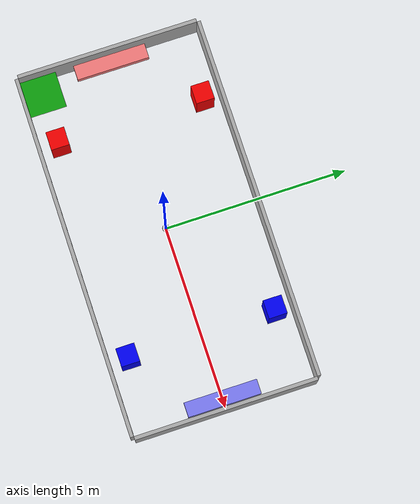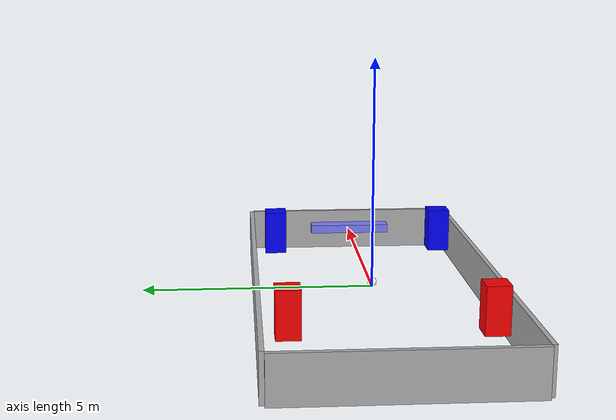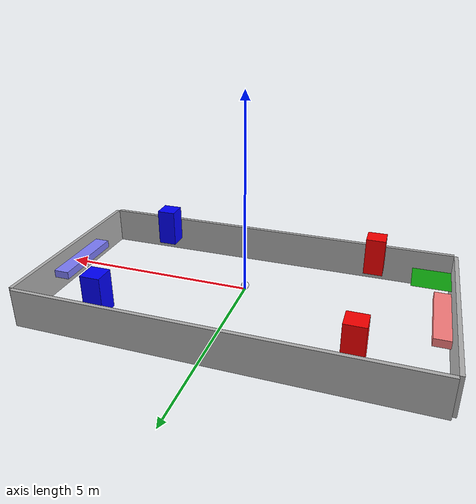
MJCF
<mujoco><asset><texture name="pitch_texture" type="2d" builtin="checker" rgb1="0.1 0.8 0.1" rgb2="0.0 0.5 0.0" width="1024" height="1024" /><material name="MatPlane" texture="pitch_texture" reflectance="0.2" /><material name="MatCheckeredAlternate" rgba="0.8 0.9 0.8 1" /><material name="MatWall" rgba="0.7 0.7 0.7 1" /><material name="team_red" rgba="1 0 0 1" /><material name="team_blue" rgba="0 0 1 1" /><material name="team_red_goal" rgba="1 0.5 0.5 1" /><material name="team_blue_goal" rgba="0.5 0.5 1 1" /><material name="ball_material" rgba="1 1 1 1" /></asset><worldbody><geom type="plane" size="0.5 0.5 0.1" pos="-4.5 -2.0 0" material="MatPlane" /><geom type="plane" size="0.5 0.5 0.1" pos="-4.5 -1.0 0" material="MatCheckeredAlternate" /><geom type="plane" size="0.5 0.5 0.1" pos="-4.5 0.0 0" material="MatPlane" /><geom type="plane" size="0.5 0.5 0.1" pos="-4.5 1.0 0" material="MatCheckeredAlternate" /><geom type="plane" size="0.5 0.5 0.1" pos="-4.5 2.0 0" material="MatPlane" /><geom type="plane" size="0.5 0.5 0.1" pos="-3.5 -2.0 0" material="MatCheckeredAlternate" /><geom type="plane" size="0.5 0.5 0.1" pos="-3.5 -1.0 0" material="MatPlane" /><geom type="plane" size="0.5 0.5 0.1" pos="-3.5 0.0 0" material="MatCheckeredAlternate" /><geom type="plane" size="0.5 0.5 0.1" pos="-3.5 1.0 0" material="MatPlane" /><geom type="plane" size="0.5 0.5 0.1" pos="-3.5 2.0 0" material="MatCheckeredAlternate" /><geom type="plane" size="0.5 0.5 0.1" pos="-2.5 -2.0 0" material="MatPlane" /><geom type="plane" size="0.5 0.5 0.1" pos="-2.5 -1.0 0" material="MatCheckeredAlternate" /><geom type="plane" size="0.5 0.5 0.1" pos="-2.5 0.0 0" material="MatPlane" /><geom type="plane" size="0.5 0.5 0.1" pos="-2.5 1.0 0" material="MatCheckeredAlternate" /><geom type="plane" size="0.5 0.5 0.1" pos="-2.5 2.0 0" material="MatPlane" /><geom type="plane" size="0.5 0.5 0.1" pos="-1.5 -2.0 0" material="MatCheckeredAlternate" /><geom type="plane" size="0.5 0.5 0.1" pos="-1.5 -1.0 0" material="MatPlane" /><geom type="plane" size="0.5 0.5 0.1" pos="-1.5 0.0 0" material="MatCheckeredAlternate" /><geom type="plane" size="0.5 0.5 0.1" pos="-1.5 1.0 0" material="MatPlane" /><geom type="plane" size="0.5 0.5 0.1" pos="-1.5 2.0 0" material="MatCheckeredAlternate" /><geom type="plane" size="0.5 0.5 0.1" pos="-0.5 -2.0 0" material="MatPlane" /><geom type="plane" size="0.5 0.5 0.1" pos="-0.5 -1.0 0" material="MatCheckeredAlternate" /><geom type="plane" size="0.5 0.5 0.1" pos="-0.5 0.0 0" material="MatPlane" /><geom type="plane" size="0.5 0.5 0.1" pos="-0.5 1.0 0" material="MatCheckeredAlternate" /><geom type="plane" size="0.5 0.5 0.1" pos="-0.5 2.0 0" material="MatPlane" /><geom type="plane" size="0.5 0.5 0.1" pos="0.5 -2.0 0" material="MatCheckeredAlternate" /><geom type="plane" size="0.5 0.5 0.1" pos="0.5 -1.0 0" material="MatPlane" /><geom type="plane" size="0.5 0.5 0.1" pos="0.5 0.0 0" material="MatCheckeredAlternate" /><geom type="plane" size="0.5 0.5 0.1" pos="0.5 1.0 0" material="MatPlane" /><geom type="plane" size="0.5 0.5 0.1" pos="0.5 2.0 0" material="MatCheckeredAlternate" /><geom type="plane" size="0.5 0.5 0.1" pos="1.5 -2.0 0" material="MatPlane" /><geom type="plane" size="0.5 0.5 0.1" pos="1.5 -1.0 0" material="MatCheckeredAlternate" /><geom type="plane" size="0.5 0.5 0.1" pos="1.5 0.0 0" material="MatPlane" /><geom type="plane" size="0.5 0.5 0.1" pos="1.5 1.0 0" material="MatCheckeredAlternate" /><geom type="plane" size="0.5 0.5 0.1" pos="1.5 2.0 0" material="MatPlane" /><geom type="plane" size="0.5 0.5 0.1" pos="2.5 -2.0 0" material="MatCheckeredAlternate" /><geom type="plane" size="0.5 0.5 0.1" pos="2.5 -1.0 0" material="MatPlane" /><geom type="plane" size="0.5 0.5 0.1" pos="2.5 0.0 0" material="MatCheckeredAlternate" /><geom type="plane" size="0.5 0.5 0.1" pos="2.5 1.0 0" material="MatPlane" /><geom type="plane" size="0.5 0.5 0.1" pos="2.5 2.0 0" material="MatCheckeredAlternate" /><geom type="plane" size="0.5 0.5 0.1" pos="3.5 -2.0 0" material="MatPlane" /><geom type="plane" size="0.5 0.5 0.1" pos="3.5 -1.0 0" material="MatCheckeredAlternate" /><geom type="plane" size="0.5 0.5 0.1" pos="3.5 0.0 0" material="MatPlane" /><geom type="plane" size="0.5 0.5 0.1" pos="3.5 1.0 0" material="MatCheckeredAlternate" /><geom type="plane" size="0.5 0.5 0.1" pos="3.5 2.0 0" material="MatPlane" /><geom type="plane" size="0.5 0.5 0.1" pos="4.5 -2.0 0" material="MatCheckeredAlternate" /><geom type="plane" size="0.5 0.5 0.1" pos="4.5 -1.0 0" material="MatPlane" /><geom type="plane" size="0.5 0.5 0.1" pos="4.5 0.0 0" material="MatCheckeredAlternate" /><geom type="plane" size="0.5 0.5 0.1" pos="4.5 1.0 0" material="MatPlane" /><geom type="plane" size="0.5 0.5 0.1" pos="4.5 2.0 0" material="MatCheckeredAlternate" /><geom type="box" size="5.0 0.05 0.5" pos="0 2.55 0" material="MatWall" /><geom type="box" size="5.0 0.05 0.5" pos="0 -2.55 0" material="MatWall" /><geom type="box" size="0.05 2.5 0.5" pos="5.05 0 0" material="MatWall" /><geom type="box" size="0.05 2.5 0.5" pos="-5.05 0 0" material="MatWall" /><body name="team_red_player_1" pos="-3 -2 0.5"><geom type="box" size="0.25 0.25 0.5" material="team_red" /></body><body name="team_red_player_2" pos="-3 2 0.5"><geom type="box" size="0.25 0.25 0.5" material="team_red" /></body><body name="team_blue_player_1" pos="3 -2 0.5"><geom type="box" size="0.25 0.25 0.5" material="team_blue" /></body><body name="team_blue_player_2" pos="3 2 0.5"><geom type="box" size="0.25 0.25 0.5" material="team_blue" /></body><geom name="team_red_goal_area" type="box" size="0.2 1 0.1" pos="-4.75 0 0.1" material="team_red_goal" /><geom name="team_blue_goal_area" type="box" size="0.2 1 0.1" pos="4.75 0 0.1" material="team_blue_goal" /><body name="ball" pos="0 0 0.1"><geom type="sphere" size="0.1" material="ball_material" /></body></worldbody></mujoco>
